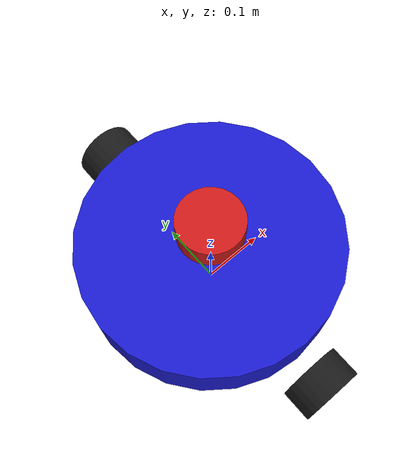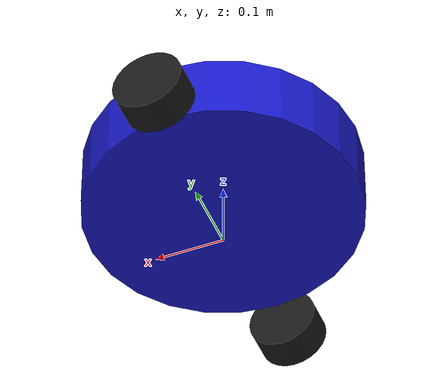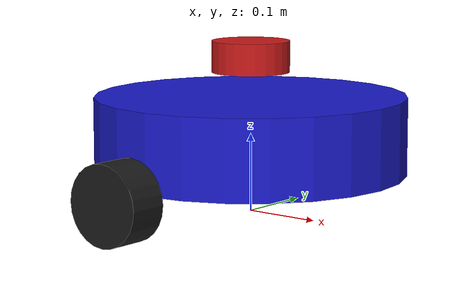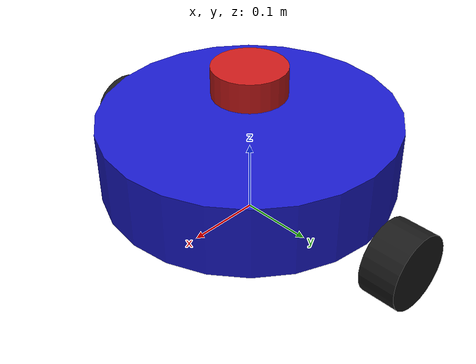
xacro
<?xml version="1.0"?>
<robot name="emrmf_robot" xmlns:xacro="http://ros.org/wiki/xacro">

  <xacro:arg name="robot_namespace" default="/" />
  <xacro:arg name="lidar_noise" default="0.01" />

  <!-- Base footprint -->
  <link name="base_footprint"/>

  <!-- Base link -->
  <joint name="base_joint" type="fixed">
    <parent link="base_footprint"/>
    <child link="base_link"/>
    <origin xyz="0 0 0.1" rpy="0 0 0"/>
  </joint>

  <link name="base_link">
    <visual>
      <geometry>
        <cylinder radius="0.2" length="0.1"/>
      </geometry>
      <material name="blue">
        <color rgba="0.1 0.1 0.8 1"/>
      </material>
    </visual>
    <collision>
      <geometry>
        <cylinder radius="0.2" length="0.1"/>
      </geometry>
    </collision>
    <inertial>
      <mass value="5.0"/>
      <inertia ixx="0.05" ixy="0" ixz="0" iyy="0.05" iyz="0" izz="0.1"/>
    </inertial>
  </link>

  <!-- Left Wheel -->
  <joint name="left_wheel_joint" type="continuous">
    <parent link="base_link"/>
    <child link="left_wheel"/>
    <origin xyz="0 0.25 -0.05" rpy="-1.5707 0 0"/>
    <axis xyz="0 0 1"/>
  </joint>

  <link name="left_wheel">
    <visual>
      <geometry>
        <cylinder radius="0.05" length="0.05"/>
      </geometry>
      <material name="black">
        <color rgba="0.1 0.1 0.1 1"/>
      </material>
    </visual>
    <collision>
      <geometry>
        <cylinder radius="0.05" length="0.05"/>
      </geometry>
    </collision>
    <inertial>
      <mass value="1.0"/>
      <inertia ixx="0.001" ixy="0" ixz="0" iyy="0.001" iyz="0" izz="0.001"/>
    </inertial>
  </link>

  <!-- Right Wheel -->
  <joint name="right_wheel_joint" type="continuous">
    <parent link="base_link"/>
    <child link="right_wheel"/>
    <origin xyz="0 -0.25 -0.05" rpy="-1.5707 0 0"/>
    <axis xyz="0 0 1"/>
  </joint>

  <link name="right_wheel">
    <visual>
      <geometry>
        <cylinder radius="0.05" length="0.05"/>
      </geometry>
      <material name="black"/>
    </visual>
    <collision>
      <geometry>
        <cylinder radius="0.05" length="0.05"/>
      </geometry>
    </collision>
    <inertial>
      <mass value="1.0"/>
      <inertia ixx="0.001" ixy="0" ixz="0" iyy="0.001" iyz="0" izz="0.001"/>
    </inertial>
  </link>

  <!-- Caster -->
  <joint name="caster_joint" type="fixed">
    <parent link="base_link"/>
    <child link="caster"/>
    <origin xyz="0.15 0 -0.05" rpy="0 0 0"/>
  </joint>

  <link name="caster">
    <collision>
      <geometry>
        <sphere radius="0.05"/>
      </geometry>
      <surface>
        <friction>
          <ode>
            <mu>0.0</mu>
            <mu2>0.0</mu2>
          </ode>
        </friction>
      </surface>
    </collision>
    <inertial>
      <mass value="0.5"/>
      <inertia ixx="0.001" ixy="0" ixz="0" iyy="0.001" iyz="0" izz="0.001"/>
    </inertial>
  </link>

  <!-- LiDAR -->
  <joint name="lidar_joint" type="fixed">
    <parent link="base_link"/>
    <child link="lidar_link"/>
    <origin xyz="0 0 0.1" rpy="0 0 0"/>
  </joint>

  <link name="lidar_link">
    <visual>
      <geometry>
        <cylinder radius="0.05" length="0.04"/>
      </geometry>
      <material name="red">
        <color rgba="0.8 0.1 0.1 1"/>
      </material>
    </visual>
  </link>

  <!-- Gazebo Differential Drive Plugin -->
  <gazebo>
    <plugin name="diff_drive" filename="libgazebo_ros_diff_drive.so">
      <ros>
        <namespace>$(arg robot_namespace)</namespace>
        <remapping>cmd_vel:=cmd_vel</remapping>
        <remapping>odom:=odom</remapping>
      </ros>
      <left_joint>left_wheel_joint</left_joint>
      <right_joint>right_wheel_joint</right_joint>
      <wheel_separation>0.5</wheel_separation>
      <wheel_diameter>0.1</wheel_diameter>
      <max_wheel_torque>20</max_wheel_torque>
      <max_wheel_acceleration>1.0</max_wheel_acceleration>
      <publish_odom>true</publish_odom>
      <publish_odom_tf>true</publish_odom_tf>
      <publish_wheel_tf>false</publish_wheel_tf>
      <odometry_frame>odom</odometry_frame>
      <robot_base_frame>base_footprint</robot_base_frame>
    </plugin>

    <!-- Ground Truth Publisher Plugin -->
    <plugin name="gazebo_ros_p3d" filename="libgazebo_ros_p3d.so">
      <ros>
        <namespace>$(arg robot_namespace)</namespace>
        <remapping>odom:=ground_truth</remapping>
      </ros>
      <body_name>base_footprint</body_name>
      <frame_name>map</frame_name>
      <update_rate>50.0</update_rate>
    </plugin>
  </gazebo>

  <!-- Gazebo LiDAR Plugin -->
  <gazebo reference="lidar_link">
    <sensor name="lidar" type="ray">
      <always_on>true</always_on>
      <visualize>false</visualize>
      <update_rate>10</update_rate>
      <ray>
        <scan>
          <horizontal>
            <samples>360</samples>
            <resolution>1.000000</resolution>
            <min_angle>0.000000</min_angle>
            <max_angle>6.280000</max_angle>
          </horizontal>
        </scan>
        <range>
          <min>0.120000</min>
          <max>12.0</max>
          <resolution>0.015000</resolution>
        </range>
        <noise>
          <type>gaussian</type>
          <mean>0.0</mean>
          <stddev>$(arg lidar_noise)</stddev>
        </noise>
      </ray>
      <plugin name="scan" filename="libgazebo_ros_ray_sensor.so">
        <ros>
          <namespace>$(arg robot_namespace)</namespace>
          <remapping>~/out:=scan</remapping>
        </ros>
        <output_type>sensor_msgs/LaserScan</output_type>
        <frame_name>lidar_link</frame_name>
      </plugin>
    </sensor>
  </gazebo>

</robot>
